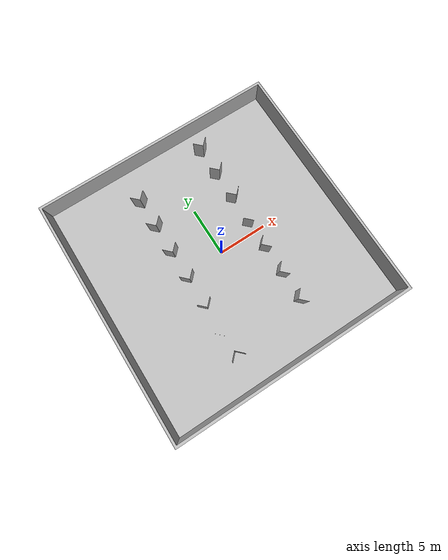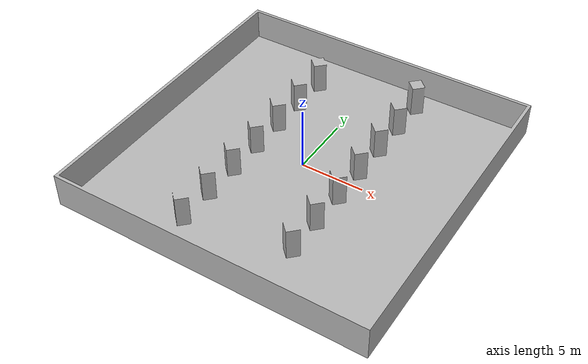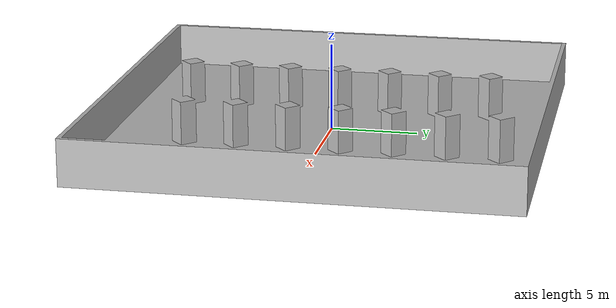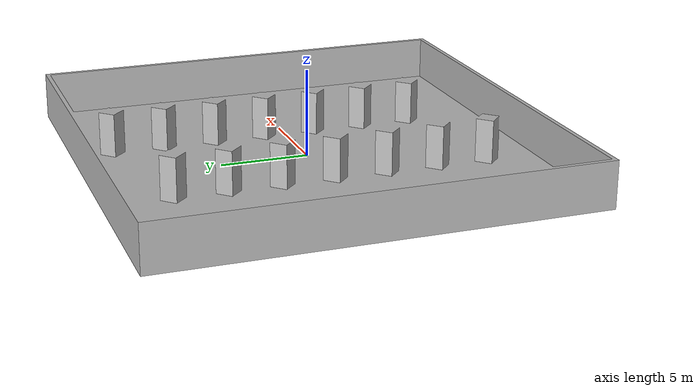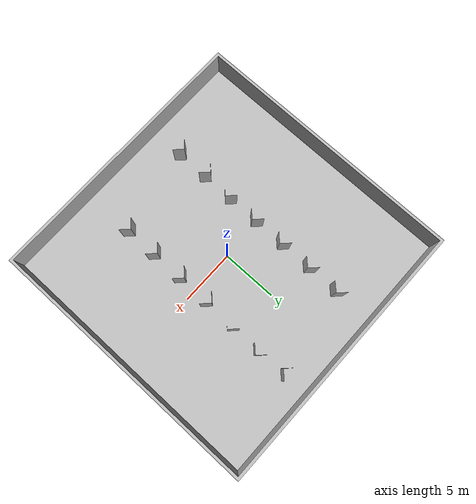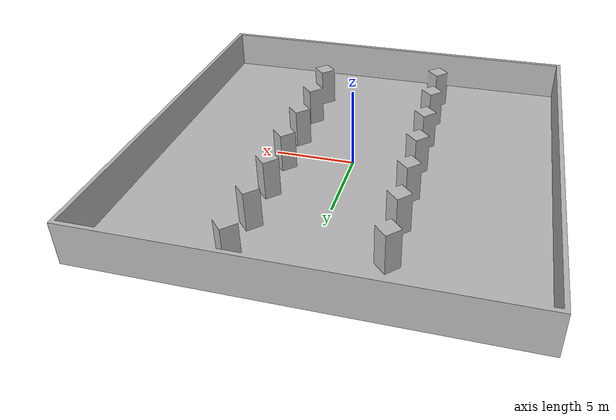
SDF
<?xml version="1.0" ?>
<sdf version="1.5">
  <world name="test_world_lin1">
    <include>
      <uri>model://sun</uri>
    </include>

	  <include>
      <uri>model://test_world_lin1</uri>
    </include>
  </world>
</sdf>

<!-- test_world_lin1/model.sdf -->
<sdf version="1.5">
  <model name="box">
    <pose>-12.5 12.5 -0.21 1.57 0 0</pose>
    <static>true</static>
    <link name="link">
      <collision name="collision">
        <geometry>
          <mesh>
            <uri>model://test_world_lin1/meshes/test_world_lin1.STL</uri>
            <scale>0.001 0.001 0.001</scale>
          </mesh>
        </geometry>
        <friction>
          <ode>
            <mu>100</mu>
            <mu2>50</mu2>
          </ode>
        </friction>
      </collision>
      <visual name="visual">
        <geometry>
          <mesh>
            <uri>model://test_world_lin1/meshes/test_world_lin1.STL</uri>
            <scale>0.001 0.001 0.001</scale>
          </mesh>
        </geometry>
      </visual>
    </link>
  </model>
</sdf>
